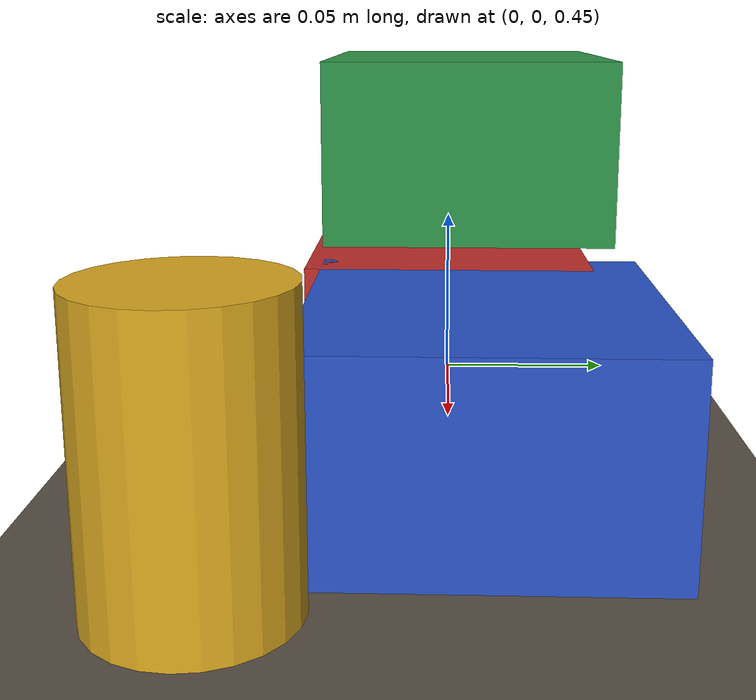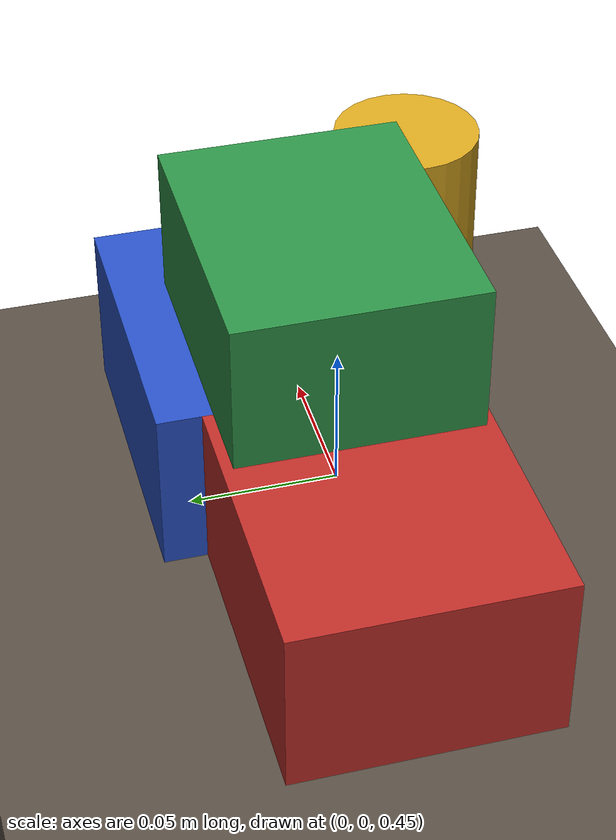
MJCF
<mujoco model="stacked_blocks">
  <compiler angle="radian" autolimits="true"/>

  <option timestep="0.002" gravity="0 0 -9.81" integrator="RK4"/>
  <visual>
    <global offwidth="1280" offheight="900"/>
  </visual>

  <default>
    <joint damping="0.01"/>
    <geom condim="4" friction="1.0 0.005 0.0001" solref="0.01 1" solimp="0.9 0.95 0.001"/>
  </default>

  <asset>
    <texture name="grid" type="2d" builtin="checker" width="512" height="512" rgb1="0.82 0.82 0.82" rgb2="0.68 0.68 0.68"/>
    <material name="floor_mat" texture="grid" texrepeat="2 2" reflectance="0.15"/>
    <material name="table_mat" rgba="0.35 0.31 0.27 1"/>
    <material name="red_mat" rgba="0.75 0.18 0.16 1"/>
    <material name="blue_mat" rgba="0.16 0.32 0.78 1"/>
    <material name="green_mat" rgba="0.18 0.58 0.28 1"/>
    <material name="yellow_mat" rgba="0.86 0.66 0.12 1"/>
  </asset>

  <worldbody>
    <light name="key_light" pos="0.2 -0.5 1.2" dir="-0.2 0.4 -1"/>
    <camera name="overview" pos="0.55 -0.65 0.75" xyaxes="0.76 0.65 0 -0.37 0.43 0.82" fovy="45"/>
    <geom name="floor" type="plane" size="1.2 1.2 0.02" material="floor_mat"/>

    <body name="table" pos="0 0 0.35">
      <geom name="table_top" type="box" size="0.45 0.35 0.035" material="table_mat"/>
    </body>

    <body name="obj_red_box" pos="-0.045 0.000 0.455">
      <freejoint/>
      <geom name="obj_red_box_geom" type="box" size="0.060 0.045 0.030" mass="0.18" material="red_mat"/>
    </body>

    <body name="obj_blue_box" pos="0.055 0.010 0.455">
      <freejoint/>
      <geom name="obj_blue_box_geom" type="box" size="0.055 0.050 0.030" mass="0.18" material="blue_mat"/>
    </body>

    <body name="obj_green_top_box" pos="0.005 0.005 0.525">
      <freejoint/>
      <geom name="obj_green_top_box_geom" type="box" size="0.050 0.040 0.025" mass="0.14" material="green_mat"/>
    </body>

    <body name="obj_yellow_cylinder" pos="0.120 -0.060 0.465">
      <freejoint/>
      <geom name="obj_yellow_cylinder_geom" type="cylinder" size="0.027 0.040" mass="0.12" material="yellow_mat"/>
    </body>
  </worldbody>
</mujoco>
